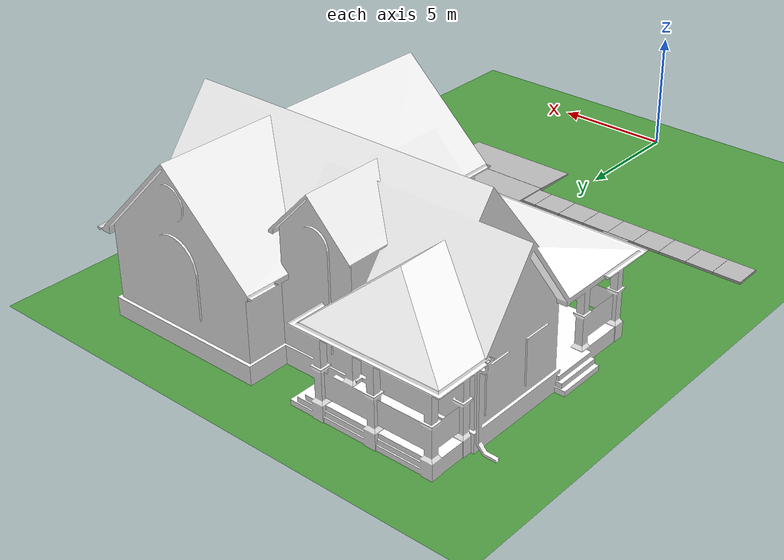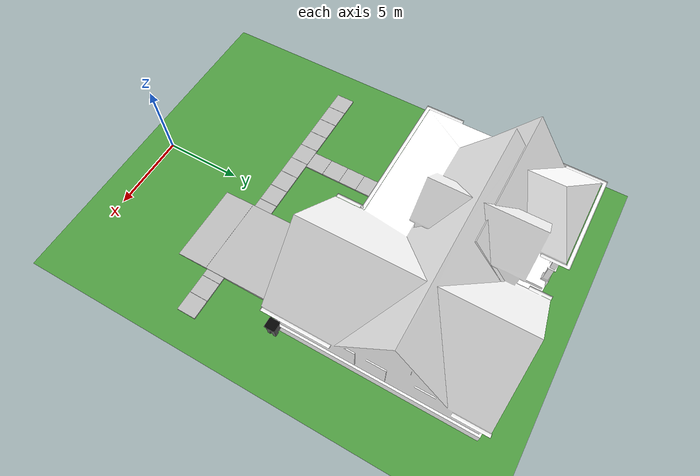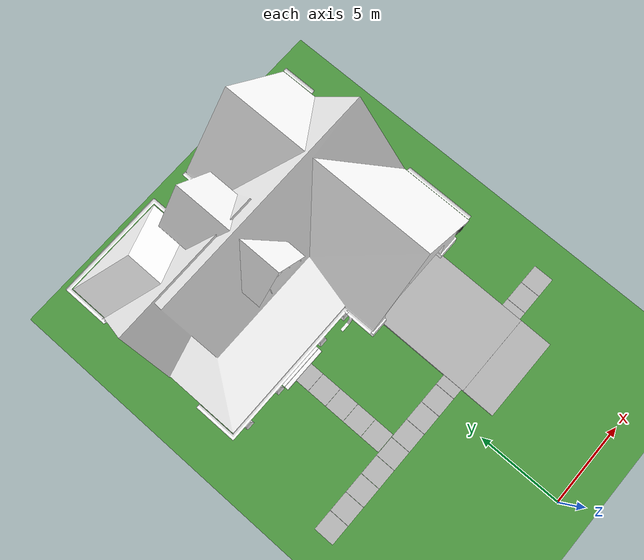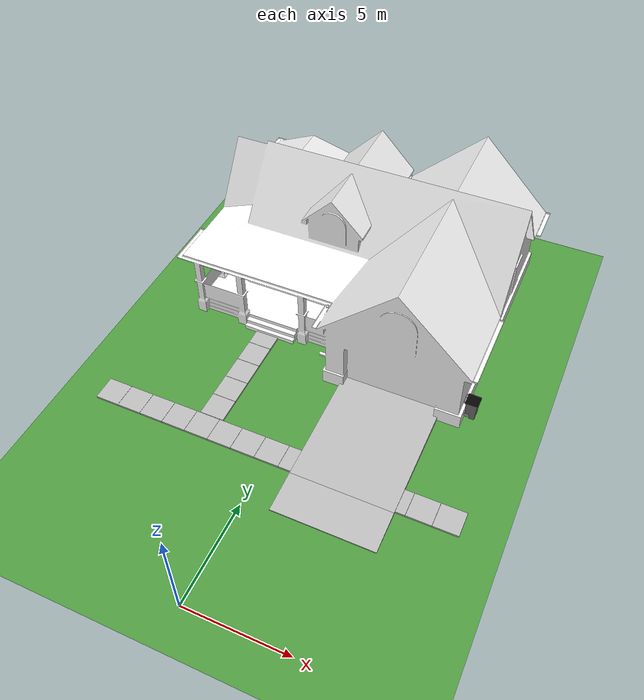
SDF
<sdf version="1.6">
 <world name="default">
  <light name="sun" type="directional">
   <pose>0 0 10 0 -0 0</pose>
   <diffuse>0.8 0.8 0.8 1</diffuse>
   <specular>0.2 0.2 0.2 1</specular>
   <attenuation>
    <range>1000</range>
    <constant>0.9</constant>
    <linear>0.01</linear>
    <quadratic>0.001</quadratic>
   </attenuation>
   <direction>-0.5 0.1 -0.9</direction>
  </light>
  <gravity>0 0 -9.8</gravity>
  <magnetic_field>6e-06 2.3e-05 -4.2e-05</magnetic_field>
  <atmosphere type="adiabatic"/>
  <physics name="default_physics" default="0" type="ode">
   <max_step_size>0.001</max_step_size>
   <real_time_factor>1</real_time_factor>
   <real_time_update_rate>1000</real_time_update_rate>
  </physics>
  <scene>
   <grid>false</grid>
   <origin_visual>false</origin_visual>
   <ambient>0.592 0.624 0.635 1</ambient>
   <sky><clouds><speed>12</speed></clouds></sky>
   <background>0.35 0.35 0.35 1.0</background>
  </scene>
  <audio><device>default</device></audio>
  <spherical_coordinates>
   <surface_model>EARTH_WGS84</surface_model>
   <latitude_deg>0</latitude_deg>
   <longitude_deg>0</longitude_deg>
   <elevation>0</elevation>
   <heading_deg>0</heading_deg>
  </spherical_coordinates>
  <model name="ground_plane">
   <static>1</static>
   <link name="link">
    <collision name="collision">
     <geometry><plane><normal>0 0 1</normal><size>100 100</size></plane></geometry>
     <surface><friction><ode><mu>100</mu><mu2>50</mu2></ode></friction></surface>
    </collision>
    <visual name="visual">
     <cast_shadows>0</cast_shadows>
     <geometry><plane><normal>0 0 1</normal><size>100 100</size></plane></geometry>
     <material>
      <script><uri>file://media/materials/scripts/gazebo.material</uri><name>Gazebo/Grass</name></script>
     </material>
    </visual>
   </link>
  </model>
  <include><name>house</name><pose>0 19.5 0 0 0 0</pose><uri>model://house_1</uri></include>
  <include><name>sidewalk_1</name><pose>0 8 0 0 0 0</pose><uri>model://sidewalk</uri></include>
  <include><name>sidewalk_2</name><pose>1.22 8 0 0 0 0</pose><uri>model://sidewalk</uri></include>
  <include><name>sidewalk_3</name><pose>2.44 8 0 0 0 0</pose><uri>model://sidewalk</uri></include>
  <include><name>sidewalk_4</name><pose>3.66 8 0 0 0 0</pose><uri>model://sidewalk</uri></include>
  <include><name>sidewalk_5</name><pose>4.88 8 0 0 0 0</pose><uri>model://sidewalk</uri></include>
  <include><name>sidewalk_6</name><pose>6.1 8 0 0 0 0</pose><uri>model://sidewalk</uri></include>
  <include><name>sidewalk_7</name><pose>7.32 8 0 0 0 0</pose><uri>model://sidewalk</uri></include>
  <include><name>sidewalk_8</name><pose>8.54 8 0 0 0 0</pose><uri>model://sidewalk</uri></include>
  <include><name>sidewalk_2_1</name><pose>-1.22 8 0 0 0 0</pose><uri>model://sidewalk</uri></include>
  <include><name>sidewalk_3_1</name><pose>-2.44 8 0 0 0 0</pose><uri>model://sidewalk</uri></include>
  <include><name>sidewalk_4_1</name><pose>-3.66 8 0 0 0 0</pose><uri>model://sidewalk</uri></include>
  <include><name>sidewalk_5_1</name><pose>-4.88 8 0 0 0 0</pose><uri>model://sidewalk</uri></include>
  <include><name>sidewalk_6_1</name><pose>-6.1 8 0 0 0 0</pose><uri>model://sidewalk</uri></include>
  <include><name>sidewalk_7_1</name><pose>-7.32 8 0 0 0 0</pose><uri>model://sidewalk</uri></include>
  <include><name>sidewalk_8_1</name><pose>-8.54 8 0 0 0 0</pose><uri>model://sidewalk</uri></include>
  <include><name>driveway</name><pose>3.75 10.3 0 0 0 0</pose><uri>model://driveway</uri></include>
  <include><name>walkway_1</name><pose>-3.5 9.23 0 0 0 0</pose><uri>model://sidewalk</uri></include>
  <include><name>walkway_2</name><pose>-3.5 10.45 0 0 0 0</pose><uri>model://sidewalk</uri></include>
  <include><name>walkway_3</name><pose>-3.5 11.67 0 0 0 0</pose><uri>model://sidewalk</uri></include>
  <include><name>walkway_4</name><pose>-3.5 12.89 0 0 0 0</pose><uri>model://sidewalk</uri></include>
  <include><name>walkway_5</name><pose>-3.5 14.11 0 0 0 0</pose><uri>model://sidewalk</uri></include>
  <include>
   <name>trash_can_35g</name>
   <pose>7.7 13.15 0.821 0 0 0</pose>
   <uri>model://trash_can_35g</uri>
  </include>
 </world>
</sdf>

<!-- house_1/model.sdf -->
<sdf version="1.5">
  <model name="House 1">
    <static>true</static>
    <link name="link">
      <collision name="collision">
        <geometry>
          <mesh>
            <uri>model://house_1/meshes/house_1.dae</uri>
            <scale>1.5 1.5 1.5</scale>
          </mesh>
        </geometry>
      </collision>
      <visual name="visual">
        <geometry>
          <mesh>
            <uri>model://house_1/meshes/house_1.dae</uri>
            <scale>1.5 1.5 1.5</scale>
          </mesh>
        </geometry>
        <material>
          <script>
            <uri>model://house_1/materials/scripts</uri>
            <uri>model://house_1/materials/textures</uri>
            <name>House_1/Diffuse</name>
          </script>
        </material>
      </visual>
    </link>
  </model>
</sdf>

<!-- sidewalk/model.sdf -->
<sdf version="1.5">
  <model name="sidewalk">
    <static>true</static>
    <link name="link">
      <collision name="collision">
        <geometry>
          <box>
            <size>1.21 1.21 .15</size>
          </box>
        </geometry>
      </collision>
      <visual name="visual">
        <cast_shadows>false</cast_shadows>
        <geometry>
          <box>
            <size>1.21 1.21 .15</size>
          </box>
        </geometry>
        <material>
          <script>
            <uri>model://sidewalk/materials/scripts</uri>
            <uri>model://sidewalk/materials/textures</uri>
            <name>Sidewalk/Concrete</name>
          </script>
        </material>
      </visual>
    </link>
  </model>
</sdf>

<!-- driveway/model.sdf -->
<sdf version="1.5">
  <model name="driveway">
    <static>true</static>
    <link name="link">
      <collision name="collision_1">
        <pose>0 0 0.02 0.02 0 0</pose>
        <geometry>
          <box>
            <size>5 6 .3</size>
          </box>
        </geometry>
        <surface>
          <friction>
            <ode>
              <mu>100</mu>
              <mu2>50</mu2>
            </ode>
            <torsional>
              <ode/>
            </torsional>
          </friction>
          <contact>
            <ode/>
          </contact>
          <bounce/>
        </surface>
        <max_contacts>10</max_contacts>
      </collision>
      <collision name="collision_2">
        <pose>0 -4 0 0.04 0 0</pose>
        <geometry>
          <box>
            <size>5 2 .15</size>
          </box>
        </geometry>
        <surface>
          <friction>
            <ode>
              <mu>100</mu>
              <mu2>50</mu2>
            </ode>
            <torsional>
              <ode/>
            </torsional>
          </friction>
          <contact>
            <ode/>
          </contact>
          <bounce/>
        </surface>
        <max_contacts>10</max_contacts>
      </collision>
      <visual name="visual_1">
        <pose>0 0 0.02 0.02 0 0</pose>
        <cast_shadows>false</cast_shadows>
        <geometry>
          <box>
            <size>5 6 .3</size>
          </box>
        </geometry>
        <material>
          <script>
            <uri>model://driveway/materials/scripts</uri>
            <uri>model://driveway/materials/textures</uri>
            <name>Driveway/Concrete</name>
          </script>
        </material>
      </visual>
      <visual name="visual_2">
        <pose>0 -4 0 0.04 0 0</pose>
        <cast_shadows>false</cast_shadows>
        <geometry>
          <box>
            <size>5 2 .15</size>
          </box>
        </geometry>
        <material>
          <script>
            <uri>model://driveway/materials/scripts</uri>
            <uri>model://driveway/materials/textures</uri>
            <name>Driveway/Concrete</name>
          </script>
        </material>
      </visual>
    </link>
  </model>
</sdf>

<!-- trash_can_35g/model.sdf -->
<sdf version="1.5">
  <model name="trash_can_35g">
    <self_collide>false</self_collide>
    <link name="base_link">
      <pose>0 0 0 0 0 0</pose>
      <inertial>
        <pose>0 0 0.4882 0 0 0</pose>
        <mass>55.5</mass>
        <inertia>
          <ixx>5.96</ixx>
          <ixy>0</ixy>
          <ixz>0</ixz>
          <iyy>7.02</iyy>
          <iyz>0</iyz>
          <izz>4.28</izz>
        </inertia>
      </inertial>

      <visual name="base_visual">
        <pose>0.1 0.13 0.13 0 0 0</pose>
        <geometry>
          <mesh>
            <uri>model://trash_can_35g/meshes/trash_can_body.dae</uri>
            <scale>0.28 0.28 0.28</scale>
          </mesh>
        </geometry>
      </visual>

      <collision name="back_base_collision">
        <pose>-0.12 0 0.15 0 0 0</pose>
        <geometry>
          <box>
            <size>0.24 0.3 0.28</size>
          </box>
        </geometry>
      </collision>

      <collision name="front_base_collision">
        <pose>0.12 0 0.15 0 0 0</pose>
        <geometry>
          <box>
            <size>0.24 0.55 0.28</size>
          </box>
        </geometry>
        <surface>
          <friction>
            <ode>
              <mu>1.0</mu>
              <mu2>1.0</mu2>
              <slip1>0.0</slip1>
              <slip2>0.0</slip2>
            </ode>
          </friction>
        </surface>
      </collision>

      <collision name="mid_base_collision">
        <pose>0 0 0.43 0 0 0</pose>
        <geometry>
          <box>
            <size>0.48 0.55 0.28</size>
          </box>
        </geometry>
      </collision>
      <collision name="top_base_collision">
        <pose>0 0 0.778 0 0 0</pose>
        <geometry>
          <box>
            <size>0.48 0.6 0.416</size>
          </box>
        </geometry>
      </collision>
    </link>

    <link name="left_wheel_link">
      <pose>-0.15 0.2 0.127 -1.57 0 0</pose>
      <inertial>
        <mass>2.72</mass>
        <inertia>
          <ixx>0.0118</ixx>
          <ixy>0</ixy>
          <ixz>0</ixz>
          <iyy>0.0118</iyy>
          <iyz>0</iyz>
          <izz>0.0037</izz>
        </inertia>
      </inertial>

      <visual name="left_wheel_visual">
        <geometry>
          <cylinder>
            <radius>0.127</radius>
            <length>0.06</length>
          </cylinder>
        </geometry>
        <material>
          <script>
            <name>Gazebo/Grey</name>
          </script>
        </material>
      </visual>

      <collision name="left_wheel_collision">
        <geometry>
          <cylinder>
            <radius>0.127</radius>
            <length>0.06</length>
          </cylinder>
        </geometry>
        <surface>
          <friction>
            <ode>
              <mu>1.0</mu>
              <mu2>0.0</mu2>
              <slip1>0</slip1>
              <slip2>0</slip2>
            </ode>
          </friction>
          <contact>
            <ode>
              <min_depth>0.005</min_depth>
              <kp>1e8</kp>
            </ode>
          </contact>
        </surface>
      </collision>
    </link>

    <link name="right_wheel_link">
      <pose>-0.15 -0.2 0.127 1.57 0 0</pose>
      <inertial>
        <mass>2.72</mass>
        <inertia>
          <ixx>0.0118</ixx>
          <ixy>0</ixy>
          <ixz>0</ixz>
          <iyy>0.0118</iyy>
          <iyz>0</iyz>
          <izz>0.0037</izz>
        </inertia>
      </inertial>

      <visual name="right_wheel_visual">
        <geometry>
          <cylinder>
            <radius>0.127</radius>
            <length>0.06</length>
          </cylinder>
        </geometry>
        <material>
          <script>
            <name>Gazebo/Grey</name>
          </script>
        </material>
      </visual>

      <collision name="right_wheel_collision">
        <geometry>
          <cylinder>
            <radius>0.127</radius>
            <length>0.06</length>
          </cylinder>
        </geometry>
        <surface>
          <friction>
            <ode>
              <mu>1.0</mu>
              <mu2>0.0</mu2>
              <slip1>0</slip1>
              <slip2>0</slip2>
            </ode>
          </friction>
          <contact>
            <ode>
              <min_depth>0.005</min_depth>
              <kp>1e8</kp>
            </ode>
          </contact>
        </surface>
      </collision>
    </link>
    <joint name="left_wheel_joint" type="revolute">
      <parent>base_link</parent>
      <child>left_wheel_link</child>
      <axis>
        <xyz>0 0 -1</xyz>
        <dynamics>
          <damping>.7</damping>
          <friction>.2</friction>
        </dynamics>
      </axis>
    </joint>
    <joint name="right_wheel_joint" type="revolute">
      <parent>base_link</parent>
      <child>right_wheel_link</child>
      <axis>
        <xyz>0 0 1</xyz>
        <dynamics>
          <damping>.7</damping>
          <friction>.2</friction>
        </dynamics>
      </axis>
    </joint>
  </model>
</sdf>
